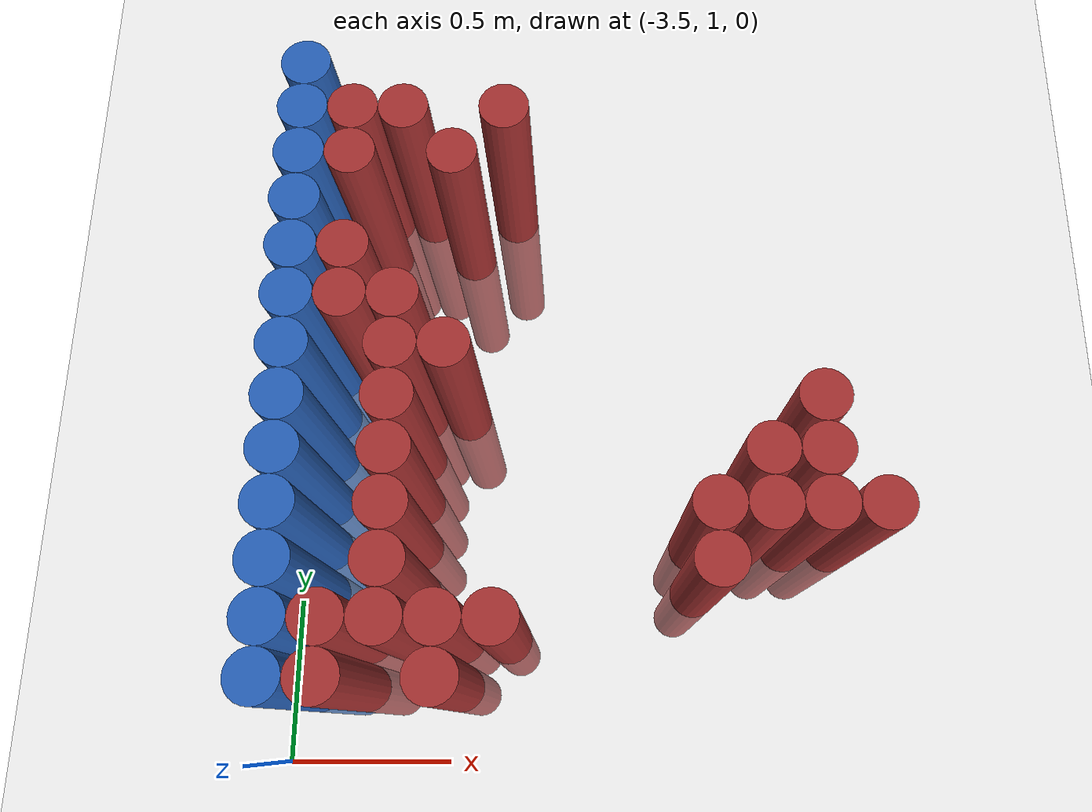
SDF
<sdf version="1.6">
 <world name="default">
  <model name="ground_plane">
   <static>1</static>
   <link name="link">
    <collision name="collision">
     <geometry><plane><normal>0 0 1</normal><size>100 100</size></plane></geometry>
     <surface><friction><ode><mu>100</mu><mu2>50</mu2></ode></friction></surface>
    </collision>
    <visual name="visual">
     <cast_shadows>0</cast_shadows>
     <geometry><plane><normal>0 0 1</normal><size>100 100</size></plane></geometry>
     <material>
      <script><uri>file://media/materials/scripts/gazebo.material</uri><name>Gazebo/Grey</name></script>
     </material>
    </visual>
   </link>
  </model>
  <model name="unit_cylinder_131">
   <static>1</static>
   <pose>-3.425000 1.225000 0.000000 0.000000 0.000000 0.000000</pose>
   <link name="link">
    <inertial>
     <mass>1</mass>
     <inertia><ixx>0.145833</ixx><ixy>0</ixy><ixz>0</ixz><iyy>0.145833</iyy><iyz>0</iyz><izz>0.125</izz></inertia>
    </inertial>
    <collision name="collision">
     <geometry><cylinder><radius>0.075000</radius><length>1.5</length></cylinder></geometry>
    </collision>
    <visual name="visual">
     <geometry><cylinder><radius>0.075000</radius><length>1.5</length></cylinder></geometry>
     <material>
      <ambient>0.152000 0.379000 0.720000 1</ambient>
      <diffuse>0.152000 0.379000 0.720000 1</diffuse>
     </material>
     <material>
      <script><name>Gazebo/Grey</name><uri>file://media/materials/scripts/gazebo.material</uri></script>
     </material>
    </visual>
   </link>
  </model>
  <model name="unit_cylinder_133">
   <static>1</static>
   <pose>-3.425000 1.375000 0.000000 0.000000 0.000000 0.000000</pose>
   <link name="link">
    <inertial>
     <mass>1</mass>
     <inertia><ixx>0.145833</ixx><ixy>0</ixy><ixz>0</ixz><iyy>0.145833</iyy><iyz>0</iyz><izz>0.125</izz></inertia>
    </inertial>
    <collision name="collision">
     <geometry><cylinder><radius>0.075000</radius><length>1.5</length></cylinder></geometry>
    </collision>
    <visual name="visual">
     <geometry><cylinder><radius>0.075000</radius><length>1.5</length></cylinder></geometry>
     <material>
      <ambient>0.152000 0.379000 0.720000 1</ambient>
      <diffuse>0.152000 0.379000 0.720000 1</diffuse>
     </material>
     <material>
      <script><name>Gazebo/Grey</name><uri>file://media/materials/scripts/gazebo.material</uri></script>
     </material>
    </visual>
   </link>
  </model>
  <model name="unit_cylinder_135">
   <static>1</static>
   <pose>-3.425000 1.525000 0.000000 0.000000 0.000000 0.000000</pose>
   <link name="link">
    <inertial>
     <mass>1</mass>
     <inertia><ixx>0.145833</ixx><ixy>0</ixy><ixz>0</ixz><iyy>0.145833</iyy><iyz>0</iyz><izz>0.125</izz></inertia>
    </inertial>
    <collision name="collision">
     <geometry><cylinder><radius>0.075000</radius><length>1.5</length></cylinder></geometry>
    </collision>
    <visual name="visual">
     <geometry><cylinder><radius>0.075000</radius><length>1.5</length></cylinder></geometry>
     <material>
      <ambient>0.152000 0.379000 0.720000 1</ambient>
      <diffuse>0.152000 0.379000 0.720000 1</diffuse>
     </material>
     <material>
      <script><name>Gazebo/Grey</name><uri>file://media/materials/scripts/gazebo.material</uri></script>
     </material>
    </visual>
   </link>
  </model>
  <model name="unit_cylinder_137">
   <static>1</static>
   <pose>-3.425000 1.675000 0.000000 0.000000 0.000000 0.000000</pose>
   <link name="link">
    <inertial>
     <mass>1</mass>
     <inertia><ixx>0.145833</ixx><ixy>0</ixy><ixz>0</ixz><iyy>0.145833</iyy><iyz>0</iyz><izz>0.125</izz></inertia>
    </inertial>
    <collision name="collision">
     <geometry><cylinder><radius>0.075000</radius><length>1.5</length></cylinder></geometry>
    </collision>
    <visual name="visual">
     <geometry><cylinder><radius>0.075000</radius><length>1.5</length></cylinder></geometry>
     <material>
      <ambient>0.152000 0.379000 0.720000 1</ambient>
      <diffuse>0.152000 0.379000 0.720000 1</diffuse>
     </material>
     <material>
      <script><name>Gazebo/Grey</name><uri>file://media/materials/scripts/gazebo.material</uri></script>
     </material>
    </visual>
   </link>
  </model>
  <model name="unit_cylinder_139">
   <static>1</static>
   <pose>-3.425000 1.825000 0.000000 0.000000 0.000000 0.000000</pose>
   <link name="link">
    <inertial>
     <mass>1</mass>
     <inertia><ixx>0.145833</ixx><ixy>0</ixy><ixz>0</ixz><iyy>0.145833</iyy><iyz>0</iyz><izz>0.125</izz></inertia>
    </inertial>
    <collision name="collision">
     <geometry><cylinder><radius>0.075000</radius><length>1.5</length></cylinder></geometry>
    </collision>
    <visual name="visual">
     <geometry><cylinder><radius>0.075000</radius><length>1.5</length></cylinder></geometry>
     <material>
      <ambient>0.152000 0.379000 0.720000 1</ambient>
      <diffuse>0.152000 0.379000 0.720000 1</diffuse>
     </material>
     <material>
      <script><name>Gazebo/Grey</name><uri>file://media/materials/scripts/gazebo.material</uri></script>
     </material>
    </visual>
   </link>
  </model>
  <model name="unit_cylinder_141">
   <static>1</static>
   <pose>-3.425000 1.975000 0.000000 0.000000 0.000000 0.000000</pose>
   <link name="link">
    <inertial>
     <mass>1</mass>
     <inertia><ixx>0.145833</ixx><ixy>0</ixy><ixz>0</ixz><iyy>0.145833</iyy><iyz>0</iyz><izz>0.125</izz></inertia>
    </inertial>
    <collision name="collision">
     <geometry><cylinder><radius>0.075000</radius><length>1.5</length></cylinder></geometry>
    </collision>
    <visual name="visual">
     <geometry><cylinder><radius>0.075000</radius><length>1.5</length></cylinder></geometry>
     <material>
      <ambient>0.152000 0.379000 0.720000 1</ambient>
      <diffuse>0.152000 0.379000 0.720000 1</diffuse>
     </material>
     <material>
      <script><name>Gazebo/Grey</name><uri>file://media/materials/scripts/gazebo.material</uri></script>
     </material>
    </visual>
   </link>
  </model>
  <model name="unit_cylinder_143">
   <static>1</static>
   <pose>-3.425000 2.125000 0.000000 0.000000 0.000000 0.000000</pose>
   <link name="link">
    <inertial>
     <mass>1</mass>
     <inertia><ixx>0.145833</ixx><ixy>0</ixy><ixz>0</ixz><iyy>0.145833</iyy><iyz>0</iyz><izz>0.125</izz></inertia>
    </inertial>
    <collision name="collision">
     <geometry><cylinder><radius>0.075000</radius><length>1.5</length></cylinder></geometry>
    </collision>
    <visual name="visual">
     <geometry><cylinder><radius>0.075000</radius><length>1.5</length></cylinder></geometry>
     <material>
      <ambient>0.152000 0.379000 0.720000 1</ambient>
      <diffuse>0.152000 0.379000 0.720000 1</diffuse>
     </material>
     <material>
      <script><name>Gazebo/Grey</name><uri>file://media/materials/scripts/gazebo.material</uri></script>
     </material>
    </visual>
   </link>
  </model>
  <model name="unit_cylinder_145">
   <static>1</static>
   <pose>-3.425000 2.275000 0.000000 0.000000 0.000000 0.000000</pose>
   <link name="link">
    <inertial>
     <mass>1</mass>
     <inertia><ixx>0.145833</ixx><ixy>0</ixy><ixz>0</ixz><iyy>0.145833</iyy><iyz>0</iyz><izz>0.125</izz></inertia>
    </inertial>
    <collision name="collision">
     <geometry><cylinder><radius>0.075000</radius><length>1.5</length></cylinder></geometry>
    </collision>
    <visual name="visual">
     <geometry><cylinder><radius>0.075000</radius><length>1.5</length></cylinder></geometry>
     <material>
      <ambient>0.152000 0.379000 0.720000 1</ambient>
      <diffuse>0.152000 0.379000 0.720000 1</diffuse>
     </material>
     <material>
      <script><name>Gazebo/Grey</name><uri>file://media/materials/scripts/gazebo.material</uri></script>
     </material>
    </visual>
   </link>
  </model>
  <model name="unit_cylinder_147">
   <static>1</static>
   <pose>-3.425000 2.425000 0.000000 0.000000 0.000000 0.000000</pose>
   <link name="link">
    <inertial>
     <mass>1</mass>
     <inertia><ixx>0.145833</ixx><ixy>0</ixy><ixz>0</ixz><iyy>0.145833</iyy><iyz>0</iyz><izz>0.125</izz></inertia>
    </inertial>
    <collision name="collision">
     <geometry><cylinder><radius>0.075000</radius><length>1.5</length></cylinder></geometry>
    </collision>
    <visual name="visual">
     <geometry><cylinder><radius>0.075000</radius><length>1.5</length></cylinder></geometry>
     <material>
      <ambient>0.152000 0.379000 0.720000 1</ambient>
      <diffuse>0.152000 0.379000 0.720000 1</diffuse>
     </material>
     <material>
      <script><name>Gazebo/Grey</name><uri>file://media/materials/scripts/gazebo.material</uri></script>
     </material>
    </visual>
   </link>
  </model>
  <model name="unit_cylinder_149">
   <static>1</static>
   <pose>-3.425000 2.575000 0.000000 0.000000 0.000000 0.000000</pose>
   <link name="link">
    <inertial>
     <mass>1</mass>
     <inertia><ixx>0.145833</ixx><ixy>0</ixy><ixz>0</ixz><iyy>0.145833</iyy><iyz>0</iyz><izz>0.125</izz></inertia>
    </inertial>
    <collision name="collision">
     <geometry><cylinder><radius>0.075000</radius><length>1.5</length></cylinder></geometry>
    </collision>
    <visual name="visual">
     <geometry><cylinder><radius>0.075000</radius><length>1.5</length></cylinder></geometry>
     <material>
      <ambient>0.152000 0.379000 0.720000 1</ambient>
      <diffuse>0.152000 0.379000 0.720000 1</diffuse>
     </material>
     <material>
      <script><name>Gazebo/Grey</name><uri>file://media/materials/scripts/gazebo.material</uri></script>
     </material>
    </visual>
   </link>
  </model>
  <model name="unit_cylinder_151">
   <static>1</static>
   <pose>-3.425000 2.725000 0.000000 0.000000 0.000000 0.000000</pose>
   <link name="link">
    <inertial>
     <mass>1</mass>
     <inertia><ixx>0.145833</ixx><ixy>0</ixy><ixz>0</ixz><iyy>0.145833</iyy><iyz>0</iyz><izz>0.125</izz></inertia>
    </inertial>
    <collision name="collision">
     <geometry><cylinder><radius>0.075000</radius><length>1.5</length></cylinder></geometry>
    </collision>
    <visual name="visual">
     <geometry><cylinder><radius>0.075000</radius><length>1.5</length></cylinder></geometry>
     <material>
      <ambient>0.152000 0.379000 0.720000 1</ambient>
      <diffuse>0.152000 0.379000 0.720000 1</diffuse>
     </material>
     <material>
      <script><name>Gazebo/Grey</name><uri>file://media/materials/scripts/gazebo.material</uri></script>
     </material>
    </visual>
   </link>
  </model>
  <model name="unit_cylinder_153">
   <static>1</static>
   <pose>-3.425000 2.875000 0.000000 0.000000 0.000000 0.000000</pose>
   <link name="link">
    <inertial>
     <mass>1</mass>
     <inertia><ixx>0.145833</ixx><ixy>0</ixy><ixz>0</ixz><iyy>0.145833</iyy><iyz>0</iyz><izz>0.125</izz></inertia>
    </inertial>
    <collision name="collision">
     <geometry><cylinder><radius>0.075000</radius><length>1.5</length></cylinder></geometry>
    </collision>
    <visual name="visual">
     <geometry><cylinder><radius>0.075000</radius><length>1.5</length></cylinder></geometry>
     <material>
      <ambient>0.152000 0.379000 0.720000 1</ambient>
      <diffuse>0.152000 0.379000 0.720000 1</diffuse>
     </material>
     <material>
      <script><name>Gazebo/Grey</name><uri>file://media/materials/scripts/gazebo.material</uri></script>
     </material>
    </visual>
   </link>
  </model>
  <model name="unit_cylinder_155">
   <static>1</static>
   <pose>-3.425000 3.025000 0.000000 0.000000 0.000000 0.000000</pose>
   <link name="link">
    <inertial>
     <mass>1</mass>
     <inertia><ixx>0.145833</ixx><ixy>0</ixy><ixz>0</ixz><iyy>0.145833</iyy><iyz>0</iyz><izz>0.125</izz></inertia>
    </inertial>
    <collision name="collision">
     <geometry><cylinder><radius>0.075000</radius><length>1.5</length></cylinder></geometry>
    </collision>
    <visual name="visual">
     <geometry><cylinder><radius>0.075000</radius><length>1.5</length></cylinder></geometry>
     <material>
      <ambient>0.152000 0.379000 0.720000 1</ambient>
      <diffuse>0.152000 0.379000 0.720000 1</diffuse>
     </material>
     <material>
      <script><name>Gazebo/Grey</name><uri>file://media/materials/scripts/gazebo.material</uri></script>
     </material>
    </visual>
   </link>
  </model>
  <model name="unit_cylinder_229">
   <static>1</static>
   <pose>-3.425000 1.225000 0.000000 0.000000 0.000000 0.000000</pose>
   <link name="link">
    <inertial>
     <mass>1</mass>
     <inertia><ixx>0.145833</ixx><ixy>0</ixy><ixz>0</ixz><iyy>0.145833</iyy><iyz>0</iyz><izz>0.125</izz></inertia>
    </inertial>
    <collision name="collision">
     <geometry><cylinder><radius>0.075000</radius><length>1.5</length></cylinder></geometry>
    </collision>
    <visual name="visual">
     <geometry><cylinder><radius>0.075000</radius><length>1.5</length></cylinder></geometry>
     <material>
      <ambient>0.152000 0.379000 0.720000 1</ambient>
      <diffuse>0.152000 0.379000 0.720000 1</diffuse>
     </material>
     <material>
      <script><name>Gazebo/Grey</name><uri>file://media/materials/scripts/gazebo.material</uri></script>
     </material>
    </visual>
   </link>
  </model>
  <model name="unit_cylinder_230">
   <static>1</static>
   <pose>-3.425000 1.375000 0.000000 0.000000 0.000000 0.000000</pose>
   <link name="link">
    <inertial>
     <mass>1</mass>
     <inertia><ixx>0.145833</ixx><ixy>0</ixy><ixz>0</ixz><iyy>0.145833</iyy><iyz>0</iyz><izz>0.125</izz></inertia>
    </inertial>
    <collision name="collision">
     <geometry><cylinder><radius>0.075000</radius><length>1.5</length></cylinder></geometry>
    </collision>
    <visual name="visual">
     <geometry><cylinder><radius>0.075000</radius><length>1.5</length></cylinder></geometry>
     <material>
      <ambient>0.152000 0.379000 0.720000 1</ambient>
      <diffuse>0.152000 0.379000 0.720000 1</diffuse>
     </material>
     <material>
      <script><name>Gazebo/Grey</name><uri>file://media/materials/scripts/gazebo.material</uri></script>
     </material>
    </visual>
   </link>
  </model>
  <model name="unit_cylinder_231">
   <static>1</static>
   <pose>-3.425000 1.525000 0.000000 0.000000 0.000000 0.000000</pose>
   <link name="link">
    <inertial>
     <mass>1</mass>
     <inertia><ixx>0.145833</ixx><ixy>0</ixy><ixz>0</ixz><iyy>0.145833</iyy><iyz>0</iyz><izz>0.125</izz></inertia>
    </inertial>
    <collision name="collision">
     <geometry><cylinder><radius>0.075000</radius><length>1.5</length></cylinder></geometry>
    </collision>
    <visual name="visual">
     <geometry><cylinder><radius>0.075000</radius><length>1.5</length></cylinder></geometry>
     <material>
      <ambient>0.152000 0.379000 0.720000 1</ambient>
      <diffuse>0.152000 0.379000 0.720000 1</diffuse>
     </material>
     <material>
      <script><name>Gazebo/Grey</name><uri>file://media/materials/scripts/gazebo.material</uri></script>
     </material>
    </visual>
   </link>
  </model>
  <model name="unit_cylinder_232">
   <static>1</static>
   <pose>-3.425000 1.675000 0.000000 0.000000 0.000000 0.000000</pose>
   <link name="link">
    <inertial>
     <mass>1</mass>
     <inertia><ixx>0.145833</ixx><ixy>0</ixy><ixz>0</ixz><iyy>0.145833</iyy><iyz>0</iyz><izz>0.125</izz></inertia>
    </inertial>
    <collision name="collision">
     <geometry><cylinder><radius>0.075000</radius><length>1.5</length></cylinder></geometry>
    </collision>
    <visual name="visual">
     <geometry><cylinder><radius>0.075000</radius><length>1.5</length></cylinder></geometry>
     <material>
      <ambient>0.152000 0.379000 0.720000 1</ambient>
      <diffuse>0.152000 0.379000 0.720000 1</diffuse>
     </material>
     <material>
      <script><name>Gazebo/Grey</name><uri>file://media/materials/scripts/gazebo.material</uri></script>
     </material>
    </visual>
   </link>
  </model>
  <model name="unit_cylinder_233">
   <static>1</static>
   <pose>-3.425000 1.825000 0.000000 0.000000 0.000000 0.000000</pose>
   <link name="link">
    <inertial>
     <mass>1</mass>
     <inertia><ixx>0.145833</ixx><ixy>0</ixy><ixz>0</ixz><iyy>0.145833</iyy><iyz>0</iyz><izz>0.125</izz></inertia>
    </inertial>
    <collision name="collision">
     <geometry><cylinder><radius>0.075000</radius><length>1.5</length></cylinder></geometry>
    </collision>
    <visual name="visual">
     <geometry><cylinder><radius>0.075000</radius><length>1.5</length></cylinder></geometry>
     <material>
      <ambient>0.152000 0.379000 0.720000 1</ambient>
      <diffuse>0.152000 0.379000 0.720000 1</diffuse>
     </material>
     <material>
      <script><name>Gazebo/Grey</name><uri>file://media/materials/scripts/gazebo.material</uri></script>
     </material>
    </visual>
   </link>
  </model>
  <model name="unit_cylinder_234">
   <static>1</static>
   <pose>-3.425000 1.975000 0.000000 0.000000 0.000000 0.000000</pose>
   <link name="link">
    <inertial>
     <mass>1</mass>
     <inertia><ixx>0.145833</ixx><ixy>0</ixy><ixz>0</ixz><iyy>0.145833</iyy><iyz>0</iyz><izz>0.125</izz></inertia>
    </inertial>
    <collision name="collision">
     <geometry><cylinder><radius>0.075000</radius><length>1.5</length></cylinder></geometry>
    </collision>
    <visual name="visual">
     <geometry><cylinder><radius>0.075000</radius><length>1.5</length></cylinder></geometry>
     <material>
      <ambient>0.152000 0.379000 0.720000 1</ambient>
      <diffuse>0.152000 0.379000 0.720000 1</diffuse>
     </material>
     <material>
      <script><name>Gazebo/Grey</name><uri>file://media/materials/scripts/gazebo.material</uri></script>
     </material>
    </visual>
   </link>
  </model>
  <model name="unit_cylinder_235">
   <static>1</static>
   <pose>-3.425000 2.125000 0.000000 0.000000 0.000000 0.000000</pose>
   <link name="link">
    <inertial>
     <mass>1</mass>
     <inertia><ixx>0.145833</ixx><ixy>0</ixy><ixz>0</ixz><iyy>0.145833</iyy><iyz>0</iyz><izz>0.125</izz></inertia>
    </inertial>
    <collision name="collision">
     <geometry><cylinder><radius>0.075000</radius><length>1.5</length></cylinder></geometry>
    </collision>
    <visual name="visual">
     <geometry><cylinder><radius>0.075000</radius><length>1.5</length></cylinder></geometry>
     <material>
      <ambient>0.152000 0.379000 0.720000 1</ambient>
      <diffuse>0.152000 0.379000 0.720000 1</diffuse>
     </material>
     <material>
      <script><name>Gazebo/Grey</name><uri>file://media/materials/scripts/gazebo.material</uri></script>
     </material>
    </visual>
   </link>
  </model>
  <model name="unit_cylinder_236">
   <static>1</static>
   <pose>-3.425000 2.275000 0.000000 0.000000 0.000000 0.000000</pose>
   <link name="link">
    <inertial>
     <mass>1</mass>
     <inertia><ixx>0.145833</ixx><ixy>0</ixy><ixz>0</ixz><iyy>0.145833</iyy><iyz>0</iyz><izz>0.125</izz></inertia>
    </inertial>
    <collision name="collision">
     <geometry><cylinder><radius>0.075000</radius><length>1.5</length></cylinder></geometry>
    </collision>
    <visual name="visual">
     <geometry><cylinder><radius>0.075000</radius><length>1.5</length></cylinder></geometry>
     <material>
      <ambient>0.152000 0.379000 0.720000 1</ambient>
      <diffuse>0.152000 0.379000 0.720000 1</diffuse>
     </material>
     <material>
      <script><name>Gazebo/Grey</name><uri>file://media/materials/scripts/gazebo.material</uri></script>
     </material>
    </visual>
   </link>
  </model>
  <model name="unit_cylinder_237">
   <static>1</static>
   <pose>-3.425000 2.425000 0.000000 0.000000 0.000000 0.000000</pose>
   <link name="link">
    <inertial>
     <mass>1</mass>
     <inertia><ixx>0.145833</ixx><ixy>0</ixy><ixz>0</ixz><iyy>0.145833</iyy><iyz>0</iyz><izz>0.125</izz></inertia>
    </inertial>
    <collision name="collision">
     <geometry><cylinder><radius>0.075000</radius><length>1.5</length></cylinder></geometry>
    </collision>
    <visual name="visual">
     <geometry><cylinder><radius>0.075000</radius><length>1.5</length></cylinder></geometry>
     <material>
      <ambient>0.152000 0.379000 0.720000 1</ambient>
      <diffuse>0.152000 0.379000 0.720000 1</diffuse>
     </material>
     <material>
      <script><name>Gazebo/Grey</name><uri>file://media/materials/scripts/gazebo.material</uri></script>
     </material>
    </visual>
   </link>
  </model>
  <model name="unit_cylinder_238">
   <static>1</static>
   <pose>-3.425000 2.575000 0.000000 0.000000 0.000000 0.000000</pose>
   <link name="link">
    <inertial>
     <mass>1</mass>
     <inertia><ixx>0.145833</ixx><ixy>0</ixy><ixz>0</ixz><iyy>0.145833</iyy><iyz>0</iyz><izz>0.125</izz></inertia>
    </inertial>
    <collision name="collision">
     <geometry><cylinder><radius>0.075000</radius><length>1.5</length></cylinder></geometry>
    </collision>
    <visual name="visual">
     <geometry><cylinder><radius>0.075000</radius><length>1.5</length></cylinder></geometry>
     <material>
      <ambient>0.152000 0.379000 0.720000 1</ambient>
      <diffuse>0.152000 0.379000 0.720000 1</diffuse>
     </material>
     <material>
      <script><name>Gazebo/Grey</name><uri>file://media/materials/scripts/gazebo.material</uri></script>
     </material>
    </visual>
   </link>
  </model>
  <model name="unit_cylinder_239">
   <static>1</static>
   <pose>-3.425000 2.725000 0.000000 0.000000 0.000000 0.000000</pose>
   <link name="link">
    <inertial>
     <mass>1</mass>
     <inertia><ixx>0.145833</ixx><ixy>0</ixy><ixz>0</ixz><iyy>0.145833</iyy><iyz>0</iyz><izz>0.125</izz></inertia>
    </inertial>
    <collision name="collision">
     <geometry><cylinder><radius>0.075000</radius><length>1.5</length></cylinder></geometry>
    </collision>
    <visual name="visual">
     <geometry><cylinder><radius>0.075000</radius><length>1.5</length></cylinder></geometry>
     <material>
      <ambient>0.152000 0.379000 0.720000 1</ambient>
      <diffuse>0.152000 0.379000 0.720000 1</diffuse>
     </material>
     <material>
      <script><name>Gazebo/Grey</name><uri>file://media/materials/scripts/gazebo.material</uri></script>
     </material>
    </visual>
   </link>
  </model>
  <model name="unit_cylinder_240">
   <static>1</static>
   <pose>-3.425000 2.875000 0.000000 0.000000 0.000000 0.000000</pose>
   <link name="link">
    <inertial>
     <mass>1</mass>
     <inertia><ixx>0.145833</ixx><ixy>0</ixy><ixz>0</ixz><iyy>0.145833</iyy><iyz>0</iyz><izz>0.125</izz></inertia>
    </inertial>
    <collision name="collision">
     <geometry><cylinder><radius>0.075000</radius><length>1.5</length></cylinder></geometry>
    </collision>
    <visual name="visual">
     <geometry><cylinder><radius>0.075000</radius><length>1.5</length></cylinder></geometry>
     <material>
      <ambient>0.152000 0.379000 0.720000 1</ambient>
      <diffuse>0.152000 0.379000 0.720000 1</diffuse>
     </material>
     <material>
      <script><name>Gazebo/Grey</name><uri>file://media/materials/scripts/gazebo.material</uri></script>
     </material>
    </visual>
   </link>
  </model>
  <model name="unit_cylinder_272">
   <static>1</static>
   <pose>-3.275000 1.225000 0.000000 0.000000 0.000000 0.000000</pose>
   <link name="link">
    <inertial>
     <mass>1</mass>
     <inertia><ixx>0.145833</ixx><ixy>0</ixy><ixz>0</ixz><iyy>0.145833</iyy><iyz>0</iyz><izz>0.125</izz></inertia>
    </inertial>
    <collision name="collision">
     <geometry><cylinder><radius>0.075000</radius><length>1.5</length></cylinder></geometry>
    </collision>
    <visual name="visual">
     <geometry><cylinder><radius>0.075000</radius><length>1.5</length></cylinder></geometry>
     <material>
      <ambient>0.648000 0.192000 0.192000 1</ambient>
      <diffuse>0.648000 0.192000 0.192000 1</diffuse>
     </material>
     <material>
      <script><name>Gazebo/Grey</name><uri>file://media/materials/scripts/gazebo.material</uri></script>
     </material>
    </visual>
   </link>
  </model>
  <model name="unit_cylinder_273">
   <static>1</static>
   <pose>-3.275000 1.375000 0.000000 0.000000 0.000000 0.000000</pose>
   <link name="link">
    <inertial>
     <mass>1</mass>
     <inertia><ixx>0.145833</ixx><ixy>0</ixy><ixz>0</ixz><iyy>0.145833</iyy><iyz>0</iyz><izz>0.125</izz></inertia>
    </inertial>
    <collision name="collision">
     <geometry><cylinder><radius>0.075000</radius><length>1.5</length></cylinder></geometry>
    </collision>
    <visual name="visual">
     <geometry><cylinder><radius>0.075000</radius><length>1.5</length></cylinder></geometry>
     <material>
      <ambient>0.648000 0.192000 0.192000 1</ambient>
      <diffuse>0.648000 0.192000 0.192000 1</diffuse>
     </material>
     <material>
      <script><name>Gazebo/Grey</name><uri>file://media/materials/scripts/gazebo.material</uri></script>
     </material>
    </visual>
   </link>
  </model>
  <model name="unit_cylinder_274">
   <static>1</static>
   <pose>-3.275000 2.275000 0.000000 0.000000 0.000000 0.000000</pose>
   <link name="link">
    <inertial>
     <mass>1</mass>
     <inertia><ixx>0.145833</ixx><ixy>0</ixy><ixz>0</ixz><iyy>0.145833</iyy><iyz>0</iyz><izz>0.125</izz></inertia>
    </inertial>
    <collision name="collision">
     <geometry><cylinder><radius>0.075000</radius><length>1.5</length></cylinder></geometry>
    </collision>
    <visual name="visual">
     <geometry><cylinder><radius>0.075000</radius><length>1.5</length></cylinder></geometry>
     <material>
      <ambient>0.648000 0.192000 0.192000 1</ambient>
      <diffuse>0.648000 0.192000 0.192000 1</diffuse>
     </material>
     <material>
      <script><name>Gazebo/Grey</name><uri>file://media/materials/scripts/gazebo.material</uri></script>
     </material>
    </visual>
   </link>
  </model>
  <model name="unit_cylinder_275">
   <static>1</static>
   <pose>-3.275000 2.425000 0.000000 0.000000 0.000000 0.000000</pose>
   <link name="link">
    <inertial>
     <mass>1</mass>
     <inertia><ixx>0.145833</ixx><ixy>0</ixy><ixz>0</ixz><iyy>0.145833</iyy><iyz>0</iyz><izz>0.125</izz></inertia>
    </inertial>
    <collision name="collision">
     <geometry><cylinder><radius>0.075000</radius><length>1.5</length></cylinder></geometry>
    </collision>
    <visual name="visual">
     <geometry><cylinder><radius>0.075000</radius><length>1.5</length></cylinder></geometry>
     <material>
      <ambient>0.648000 0.192000 0.192000 1</ambient>
      <diffuse>0.648000 0.192000 0.192000 1</diffuse>
     </material>
     <material>
      <script><name>Gazebo/Grey</name><uri>file://media/materials/scripts/gazebo.material</uri></script>
     </material>
    </visual>
   </link>
  </model>
  <model name="unit_cylinder_276">
   <static>1</static>
   <pose>-3.275000 2.725000 0.000000 0.000000 0.000000 0.000000</pose>
   <link name="link">
    <inertial>
     <mass>1</mass>
     <inertia><ixx>0.145833</ixx><ixy>0</ixy><ixz>0</ixz><iyy>0.145833</iyy><iyz>0</iyz><izz>0.125</izz></inertia>
    </inertial>
    <collision name="collision">
     <geometry><cylinder><radius>0.075000</radius><length>1.5</length></cylinder></geometry>
    </collision>
    <visual name="visual">
     <geometry><cylinder><radius>0.075000</radius><length>1.5</length></cylinder></geometry>
     <material>
      <ambient>0.648000 0.192000 0.192000 1</ambient>
      <diffuse>0.648000 0.192000 0.192000 1</diffuse>
     </material>
     <material>
      <script><name>Gazebo/Grey</name><uri>file://media/materials/scripts/gazebo.material</uri></script>
     </material>
    </visual>
   </link>
  </model>
  <model name="unit_cylinder_277">
   <static>1</static>
   <pose>-3.275000 2.875000 0.000000 0.000000 0.000000 0.000000</pose>
   <link name="link">
    <inertial>
     <mass>1</mass>
     <inertia><ixx>0.145833</ixx><ixy>0</ixy><ixz>0</ixz><iyy>0.145833</iyy><iyz>0</iyz><izz>0.125</izz></inertia>
    </inertial>
    <collision name="collision">
     <geometry><cylinder><radius>0.075000</radius><length>1.5</length></cylinder></geometry>
    </collision>
    <visual name="visual">
     <geometry><cylinder><radius>0.075000</radius><length>1.5</length></cylinder></geometry>
     <material>
      <ambient>0.648000 0.192000 0.192000 1</ambient>
      <diffuse>0.648000 0.192000 0.192000 1</diffuse>
     </material>
     <material>
      <script><name>Gazebo/Grey</name><uri>file://media/materials/scripts/gazebo.material</uri></script>
     </material>
    </visual>
   </link>
  </model>
  <model name="unit_cylinder_285">
   <static>1</static>
   <pose>-3.125000 1.375000 0.000000 0.000000 0.000000 0.000000</pose>
   <link name="link">
    <inertial>
     <mass>1</mass>
     <inertia><ixx>0.145833</ixx><ixy>0</ixy><ixz>0</ixz><iyy>0.145833</iyy><iyz>0</iyz><izz>0.125</izz></inertia>
    </inertial>
    <collision name="collision">
     <geometry><cylinder><radius>0.075000</radius><length>1.5</length></cylinder></geometry>
    </collision>
    <visual name="visual">
     <geometry><cylinder><radius>0.075000</radius><length>1.5</length></cylinder></geometry>
     <material>
      <ambient>0.648000 0.192000 0.192000 1</ambient>
      <diffuse>0.648000 0.192000 0.192000 1</diffuse>
     </material>
     <material>
      <script><name>Gazebo/Grey</name><uri>file://media/materials/scripts/gazebo.material</uri></script>
     </material>
    </visual>
   </link>
  </model>
  <model name="unit_cylinder_286">
   <static>1</static>
   <pose>-3.125000 1.525000 0.000000 0.000000 0.000000 0.000000</pose>
   <link name="link">
    <inertial>
     <mass>1</mass>
     <inertia><ixx>0.145833</ixx><ixy>0</ixy><ixz>0</ixz><iyy>0.145833</iyy><iyz>0</iyz><izz>0.125</izz></inertia>
    </inertial>
    <collision name="collision">
     <geometry><cylinder><radius>0.075000</radius><length>1.5</length></cylinder></geometry>
    </collision>
    <visual name="visual">
     <geometry><cylinder><radius>0.075000</radius><length>1.5</length></cylinder></geometry>
     <material>
      <ambient>0.648000 0.192000 0.192000 1</ambient>
      <diffuse>0.648000 0.192000 0.192000 1</diffuse>
     </material>
     <material>
      <script><name>Gazebo/Grey</name><uri>file://media/materials/scripts/gazebo.material</uri></script>
     </material>
    </visual>
   </link>
  </model>
  <model name="unit_cylinder_287">
   <static>1</static>
   <pose>-3.125000 1.675000 0.000000 0.000000 0.000000 0.000000</pose>
   <link name="link">
    <inertial>
     <mass>1</mass>
     <inertia><ixx>0.145833</ixx><ixy>0</ixy><ixz>0</ixz><iyy>0.145833</iyy><iyz>0</iyz><izz>0.125</izz></inertia>
    </inertial>
    <collision name="collision">
     <geometry><cylinder><radius>0.075000</radius><length>1.5</length></cylinder></geometry>
    </collision>
    <visual name="visual">
     <geometry><cylinder><radius>0.075000</radius><length>1.5</length></cylinder></geometry>
     <material>
      <ambient>0.648000 0.192000 0.192000 1</ambient>
      <diffuse>0.648000 0.192000 0.192000 1</diffuse>
     </material>
     <material>
      <script><name>Gazebo/Grey</name><uri>file://media/materials/scripts/gazebo.material</uri></script>
     </material>
    </visual>
   </link>
  </model>
  <model name="unit_cylinder_288">
   <static>1</static>
   <pose>-3.125000 1.825000 0.000000 0.000000 0.000000 0.000000</pose>
   <link name="link">
    <inertial>
     <mass>1</mass>
     <inertia><ixx>0.145833</ixx><ixy>0</ixy><ixz>0</ixz><iyy>0.145833</iyy><iyz>0</iyz><izz>0.125</izz></inertia>
    </inertial>
    <collision name="collision">
     <geometry><cylinder><radius>0.075000</radius><length>1.5</length></cylinder></geometry>
    </collision>
    <visual name="visual">
     <geometry><cylinder><radius>0.075000</radius><length>1.5</length></cylinder></geometry>
     <material>
      <ambient>0.648000 0.192000 0.192000 1</ambient>
      <diffuse>0.648000 0.192000 0.192000 1</diffuse>
     </material>
     <material>
      <script><name>Gazebo/Grey</name><uri>file://media/materials/scripts/gazebo.material</uri></script>
     </material>
    </visual>
   </link>
  </model>
  <model name="unit_cylinder_289">
   <static>1</static>
   <pose>-3.125000 1.975000 0.000000 0.000000 0.000000 0.000000</pose>
   <link name="link">
    <inertial>
     <mass>1</mass>
     <inertia><ixx>0.145833</ixx><ixy>0</ixy><ixz>0</ixz><iyy>0.145833</iyy><iyz>0</iyz><izz>0.125</izz></inertia>
    </inertial>
    <collision name="collision">
     <geometry><cylinder><radius>0.075000</radius><length>1.5</length></cylinder></geometry>
    </collision>
    <visual name="visual">
     <geometry><cylinder><radius>0.075000</radius><length>1.5</length></cylinder></geometry>
     <material>
      <ambient>0.648000 0.192000 0.192000 1</ambient>
      <diffuse>0.648000 0.192000 0.192000 1</diffuse>
     </material>
     <material>
      <script><name>Gazebo/Grey</name><uri>file://media/materials/scripts/gazebo.material</uri></script>
     </material>
    </visual>
   </link>
  </model>
  <model name="unit_cylinder_290">
   <static>1</static>
   <pose>-3.125000 2.125000 0.000000 0.000000 0.000000 0.000000</pose>
   <link name="link">
    <inertial>
     <mass>1</mass>
     <inertia><ixx>0.145833</ixx><ixy>0</ixy><ixz>0</ixz><iyy>0.145833</iyy><iyz>0</iyz><izz>0.125</izz></inertia>
    </inertial>
    <collision name="collision">
     <geometry><cylinder><radius>0.075000</radius><length>1.5</length></cylinder></geometry>
    </collision>
    <visual name="visual">
     <geometry><cylinder><radius>0.075000</radius><length>1.5</length></cylinder></geometry>
     <material>
      <ambient>0.648000 0.192000 0.192000 1</ambient>
      <diffuse>0.648000 0.192000 0.192000 1</diffuse>
     </material>
     <material>
      <script><name>Gazebo/Grey</name><uri>file://media/materials/scripts/gazebo.material</uri></script>
     </material>
    </visual>
   </link>
  </model>
  <model name="unit_cylinder_291">
   <static>1</static>
   <pose>-3.125000 2.275000 0.000000 0.000000 0.000000 0.000000</pose>
   <link name="link">
    <inertial>
     <mass>1</mass>
     <inertia><ixx>0.145833</ixx><ixy>0</ixy><ixz>0</ixz><iyy>0.145833</iyy><iyz>0</iyz><izz>0.125</izz></inertia>
    </inertial>
    <collision name="collision">
     <geometry><cylinder><radius>0.075000</radius><length>1.5</length></cylinder></geometry>
    </collision>
    <visual name="visual">
     <geometry><cylinder><radius>0.075000</radius><length>1.5</length></cylinder></geometry>
     <material>
      <ambient>0.648000 0.192000 0.192000 1</ambient>
      <diffuse>0.648000 0.192000 0.192000 1</diffuse>
     </material>
     <material>
      <script><name>Gazebo/Grey</name><uri>file://media/materials/scripts/gazebo.material</uri></script>
     </material>
    </visual>
   </link>
  </model>
  <model name="unit_cylinder_292">
   <static>1</static>
   <pose>-3.125000 2.875000 0.000000 0.000000 0.000000 0.000000</pose>
   <link name="link">
    <inertial>
     <mass>1</mass>
     <inertia><ixx>0.145833</ixx><ixy>0</ixy><ixz>0</ixz><iyy>0.145833</iyy><iyz>0</iyz><izz>0.125</izz></inertia>
    </inertial>
    <collision name="collision">
     <geometry><cylinder><radius>0.075000</radius><length>1.5</length></cylinder></geometry>
    </collision>
    <visual name="visual">
     <geometry><cylinder><radius>0.075000</radius><length>1.5</length></cylinder></geometry>
     <material>
      <ambient>0.648000 0.192000 0.192000 1</ambient>
      <diffuse>0.648000 0.192000 0.192000 1</diffuse>
     </material>
     <material>
      <script><name>Gazebo/Grey</name><uri>file://media/materials/scripts/gazebo.material</uri></script>
     </material>
    </visual>
   </link>
  </model>
  <model name="unit_cylinder_293">
   <static>1</static>
   <pose>-2.975000 1.225000 0.000000 0.000000 0.000000 0.000000</pose>
   <link name="link">
    <inertial>
     <mass>1</mass>
     <inertia><ixx>0.145833</ixx><ixy>0</ixy><ixz>0</ixz><iyy>0.145833</iyy><iyz>0</iyz><izz>0.125</izz></inertia>
    </inertial>
    <collision name="collision">
     <geometry><cylinder><radius>0.075000</radius><length>1.5</length></cylinder></geometry>
    </collision>
    <visual name="visual">
     <geometry><cylinder><radius>0.075000</radius><length>1.5</length></cylinder></geometry>
     <material>
      <ambient>0.648000 0.192000 0.192000 1</ambient>
      <diffuse>0.648000 0.192000 0.192000 1</diffuse>
     </material>
     <material>
      <script><name>Gazebo/Grey</name><uri>file://media/materials/scripts/gazebo.material</uri></script>
     </material>
    </visual>
   </link>
  </model>
  <model name="unit_cylinder_294">
   <static>1</static>
   <pose>-2.975000 1.375000 0.000000 0.000000 0.000000 0.000000</pose>
   <link name="link">
    <inertial>
     <mass>1</mass>
     <inertia><ixx>0.145833</ixx><ixy>0</ixy><ixz>0</ixz><iyy>0.145833</iyy><iyz>0</iyz><izz>0.125</izz></inertia>
    </inertial>
    <collision name="collision">
     <geometry><cylinder><radius>0.075000</radius><length>1.5</length></cylinder></geometry>
    </collision>
    <visual name="visual">
     <geometry><cylinder><radius>0.075000</radius><length>1.5</length></cylinder></geometry>
     <material>
      <ambient>0.648000 0.192000 0.192000 1</ambient>
      <diffuse>0.648000 0.192000 0.192000 1</diffuse>
     </material>
     <material>
      <script><name>Gazebo/Grey</name><uri>file://media/materials/scripts/gazebo.material</uri></script>
     </material>
    </visual>
   </link>
  </model>
  <model name="unit_cylinder_295">
   <static>1</static>
   <pose>-2.975000 2.125000 0.000000 0.000000 0.000000 0.000000</pose>
   <link name="link">
    <inertial>
     <mass>1</mass>
     <inertia><ixx>0.145833</ixx><ixy>0</ixy><ixz>0</ixz><iyy>0.145833</iyy><iyz>0</iyz><izz>0.125</izz></inertia>
    </inertial>
    <collision name="collision">
     <geometry><cylinder><radius>0.075000</radius><length>1.5</length></cylinder></geometry>
    </collision>
    <visual name="visual">
     <geometry><cylinder><radius>0.075000</radius><length>1.5</length></cylinder></geometry>
     <material>
      <ambient>0.648000 0.192000 0.192000 1</ambient>
      <diffuse>0.648000 0.192000 0.192000 1</diffuse>
     </material>
     <material>
      <script><name>Gazebo/Grey</name><uri>file://media/materials/scripts/gazebo.material</uri></script>
     </material>
    </visual>
   </link>
  </model>
  <model name="unit_cylinder_296">
   <static>1</static>
   <pose>-2.975000 2.725000 0.000000 0.000000 0.000000 0.000000</pose>
   <link name="link">
    <inertial>
     <mass>1</mass>
     <inertia><ixx>0.145833</ixx><ixy>0</ixy><ixz>0</ixz><iyy>0.145833</iyy><iyz>0</iyz><izz>0.125</izz></inertia>
    </inertial>
    <collision name="collision">
     <geometry><cylinder><radius>0.075000</radius><length>1.5</length></cylinder></geometry>
    </collision>
    <visual name="visual">
     <geometry><cylinder><radius>0.075000</radius><length>1.5</length></cylinder></geometry>
     <material>
      <ambient>0.648000 0.192000 0.192000 1</ambient>
      <diffuse>0.648000 0.192000 0.192000 1</diffuse>
     </material>
     <material>
      <script><name>Gazebo/Grey</name><uri>file://media/materials/scripts/gazebo.material</uri></script>
     </material>
    </visual>
   </link>
  </model>
  <model name="unit_cylinder_297">
   <static>1</static>
   <pose>-2.825000 1.375000 0.000000 0.000000 0.000000 0.000000</pose>
   <link name="link">
    <inertial>
     <mass>1</mass>
     <inertia><ixx>0.145833</ixx><ixy>0</ixy><ixz>0</ixz><iyy>0.145833</iyy><iyz>0</iyz><izz>0.125</izz></inertia>
    </inertial>
    <collision name="collision">
     <geometry><cylinder><radius>0.075000</radius><length>1.5</length></cylinder></geometry>
    </collision>
    <visual name="visual">
     <geometry><cylinder><radius>0.075000</radius><length>1.5</length></cylinder></geometry>
     <material>
      <ambient>0.648000 0.192000 0.192000 1</ambient>
      <diffuse>0.648000 0.192000 0.192000 1</diffuse>
     </material>
     <material>
      <script><name>Gazebo/Grey</name><uri>file://media/materials/scripts/gazebo.material</uri></script>
     </material>
    </visual>
   </link>
  </model>
  <model name="unit_cylinder_298">
   <static>1</static>
   <pose>-2.825000 2.875000 0.000000 0.000000 0.000000 0.000000</pose>
   <link name="link">
    <inertial>
     <mass>1</mass>
     <inertia><ixx>0.145833</ixx><ixy>0</ixy><ixz>0</ixz><iyy>0.145833</iyy><iyz>0</iyz><izz>0.125</izz></inertia>
    </inertial>
    <collision name="collision">
     <geometry><cylinder><radius>0.075000</radius><length>1.5</length></cylinder></geometry>
    </collision>
    <visual name="visual">
     <geometry><cylinder><radius>0.075000</radius><length>1.5</length></cylinder></geometry>
     <material>
      <ambient>0.648000 0.192000 0.192000 1</ambient>
      <diffuse>0.648000 0.192000 0.192000 1</diffuse>
     </material>
     <material>
      <script><name>Gazebo/Grey</name><uri>file://media/materials/scripts/gazebo.material</uri></script>
     </material>
    </visual>
   </link>
  </model>
  <model name="unit_cylinder_304">
   <static>1</static>
   <pose>-2.225000 1.525000 0.000000 0.000000 0.000000 0.000000</pose>
   <link name="link">
    <inertial>
     <mass>1</mass>
     <inertia><ixx>0.145833</ixx><ixy>0</ixy><ixz>0</ixz><iyy>0.145833</iyy><iyz>0</iyz><izz>0.125</izz></inertia>
    </inertial>
    <collision name="collision">
     <geometry><cylinder><radius>0.075000</radius><length>1.5</length></cylinder></geometry>
    </collision>
    <visual name="visual">
     <geometry><cylinder><radius>0.075000</radius><length>1.5</length></cylinder></geometry>
     <material>
      <ambient>0.648000 0.192000 0.192000 1</ambient>
      <diffuse>0.648000 0.192000 0.192000 1</diffuse>
     </material>
     <material>
      <script><name>Gazebo/Grey</name><uri>file://media/materials/scripts/gazebo.material</uri></script>
     </material>
    </visual>
   </link>
  </model>
  <model name="unit_cylinder_305">
   <static>1</static>
   <pose>-2.225000 1.675000 0.000000 0.000000 0.000000 0.000000</pose>
   <link name="link">
    <inertial>
     <mass>1</mass>
     <inertia><ixx>0.145833</ixx><ixy>0</ixy><ixz>0</ixz><iyy>0.145833</iyy><iyz>0</iyz><izz>0.125</izz></inertia>
    </inertial>
    <collision name="collision">
     <geometry><cylinder><radius>0.075000</radius><length>1.5</length></cylinder></geometry>
    </collision>
    <visual name="visual">
     <geometry><cylinder><radius>0.075000</radius><length>1.5</length></cylinder></geometry>
     <material>
      <ambient>0.648000 0.192000 0.192000 1</ambient>
      <diffuse>0.648000 0.192000 0.192000 1</diffuse>
     </material>
     <material>
      <script><name>Gazebo/Grey</name><uri>file://media/materials/scripts/gazebo.material</uri></script>
     </material>
    </visual>
   </link>
  </model>
  <model name="unit_cylinder_308">
   <static>1</static>
   <pose>-2.075000 1.675000 0.000000 0.000000 0.000000 0.000000</pose>
   <link name="link">
    <inertial>
     <mass>1</mass>
     <inertia><ixx>0.145833</ixx><ixy>0</ixy><ixz>0</ixz><iyy>0.145833</iyy><iyz>0</iyz><izz>0.125</izz></inertia>
    </inertial>
    <collision name="collision">
     <geometry><cylinder><radius>0.075000</radius><length>1.5</length></cylinder></geometry>
    </collision>
    <visual name="visual">
     <geometry><cylinder><radius>0.075000</radius><length>1.5</length></cylinder></geometry>
     <material>
      <ambient>0.648000 0.192000 0.192000 1</ambient>
      <diffuse>0.648000 0.192000 0.192000 1</diffuse>
     </material>
     <material>
      <script><name>Gazebo/Grey</name><uri>file://media/materials/scripts/gazebo.material</uri></script>
     </material>
    </visual>
   </link>
  </model>
  <model name="unit_cylinder_309">
   <static>1</static>
   <pose>-2.075000 1.825000 0.000000 0.000000 0.000000 0.000000</pose>
   <link name="link">
    <inertial>
     <mass>1</mass>
     <inertia><ixx>0.145833</ixx><ixy>0</ixy><ixz>0</ixz><iyy>0.145833</iyy><iyz>0</iyz><izz>0.125</izz></inertia>
    </inertial>
    <collision name="collision">
     <geometry><cylinder><radius>0.075000</radius><length>1.5</length></cylinder></geometry>
    </collision>
    <visual name="visual">
     <geometry><cylinder><radius>0.075000</radius><length>1.5</length></cylinder></geometry>
     <material>
      <ambient>0.648000 0.192000 0.192000 1</ambient>
      <diffuse>0.648000 0.192000 0.192000 1</diffuse>
     </material>
     <material>
      <script><name>Gazebo/Grey</name><uri>file://media/materials/scripts/gazebo.material</uri></script>
     </material>
    </visual>
   </link>
  </model>
  <model name="unit_cylinder_313">
   <static>1</static>
   <pose>-1.925000 1.675000 0.000000 0.000000 0.000000 0.000000</pose>
   <link name="link">
    <inertial>
     <mass>1</mass>
     <inertia><ixx>0.145833</ixx><ixy>0</ixy><ixz>0</ixz><iyy>0.145833</iyy><iyz>0</iyz><izz>0.125</izz></inertia>
    </inertial>
    <collision name="collision">
     <geometry><cylinder><radius>0.075000</radius><length>1.5</length></cylinder></geometry>
    </collision>
    <visual name="visual">
     <geometry><cylinder><radius>0.075000</radius><length>1.5</length></cylinder></geometry>
     <material>
      <ambient>0.648000 0.192000 0.192000 1</ambient>
      <diffuse>0.648000 0.192000 0.192000 1</diffuse>
     </material>
     <material>
      <script><name>Gazebo/Grey</name><uri>file://media/materials/scripts/gazebo.material</uri></script>
     </material>
    </visual>
   </link>
  </model>
  <model name="unit_cylinder_314">
   <static>1</static>
   <pose>-1.925000 1.825000 0.000000 0.000000 0.000000 0.000000</pose>
   <link name="link">
    <inertial>
     <mass>1</mass>
     <inertia><ixx>0.145833</ixx><ixy>0</ixy><ixz>0</ixz><iyy>0.145833</iyy><iyz>0</iyz><izz>0.125</izz></inertia>
    </inertial>
    <collision name="collision">
     <geometry><cylinder><radius>0.075000</radius><length>1.5</length></cylinder></geometry>
    </collision>
    <visual name="visual">
     <geometry><cylinder><radius>0.075000</radius><length>1.5</length></cylinder></geometry>
     <material>
      <ambient>0.648000 0.192000 0.192000 1</ambient>
      <diffuse>0.648000 0.192000 0.192000 1</diffuse>
     </material>
     <material>
      <script><name>Gazebo/Grey</name><uri>file://media/materials/scripts/gazebo.material</uri></script>
     </material>
    </visual>
   </link>
  </model>
  <model name="unit_cylinder_315">
   <static>1</static>
   <pose>-1.925000 1.975000 0.000000 0.000000 0.000000 0.000000</pose>
   <link name="link">
    <inertial>
     <mass>1</mass>
     <inertia><ixx>0.145833</ixx><ixy>0</ixy><ixz>0</ixz><iyy>0.145833</iyy><iyz>0</iyz><izz>0.125</izz></inertia>
    </inertial>
    <collision name="collision">
     <geometry><cylinder><radius>0.075000</radius><length>1.5</length></cylinder></geometry>
    </collision>
    <visual name="visual">
     <geometry><cylinder><radius>0.075000</radius><length>1.5</length></cylinder></geometry>
     <material>
      <ambient>0.648000 0.192000 0.192000 1</ambient>
      <diffuse>0.648000 0.192000 0.192000 1</diffuse>
     </material>
     <material>
      <script><name>Gazebo/Grey</name><uri>file://media/materials/scripts/gazebo.material</uri></script>
     </material>
    </visual>
   </link>
  </model>
  <model name="unit_cylinder_318">
   <static>1</static>
   <pose>-1.775000 1.675000 0.000000 0.000000 0.000000 0.000000</pose>
   <link name="link">
    <inertial>
     <mass>1</mass>
     <inertia><ixx>0.145833</ixx><ixy>0</ixy><ixz>0</ixz><iyy>0.145833</iyy><iyz>0</iyz><izz>0.125</izz></inertia>
    </inertial>
    <collision name="collision">
     <geometry><cylinder><radius>0.075000</radius><length>1.5</length></cylinder></geometry>
    </collision>
    <visual name="visual">
     <geometry><cylinder><radius>0.075000</radius><length>1.5</length></cylinder></geometry>
     <material>
      <ambient>0.648000 0.192000 0.192000 1</ambient>
      <diffuse>0.648000 0.192000 0.192000 1</diffuse>
     </material>
     <material>
      <script><name>Gazebo/Grey</name><uri>file://media/materials/scripts/gazebo.material</uri></script>
     </material>
    </visual>
   </link>
  </model>
 </world>
</sdf>
